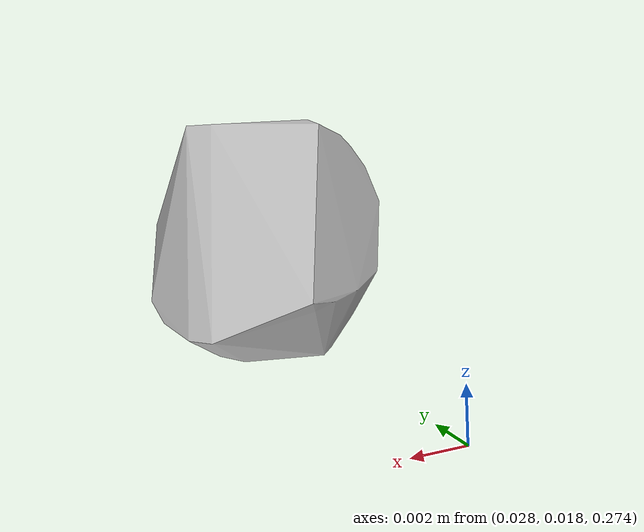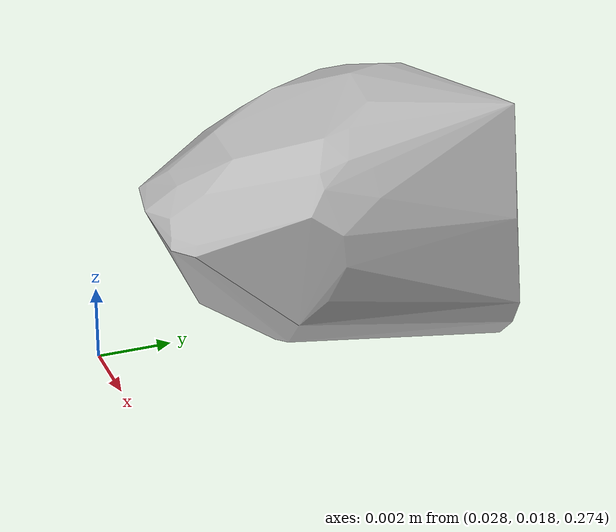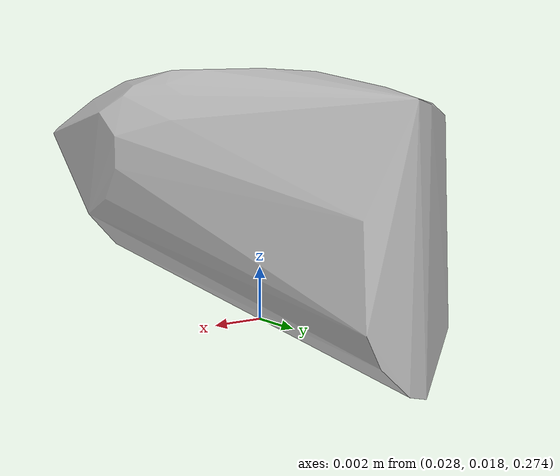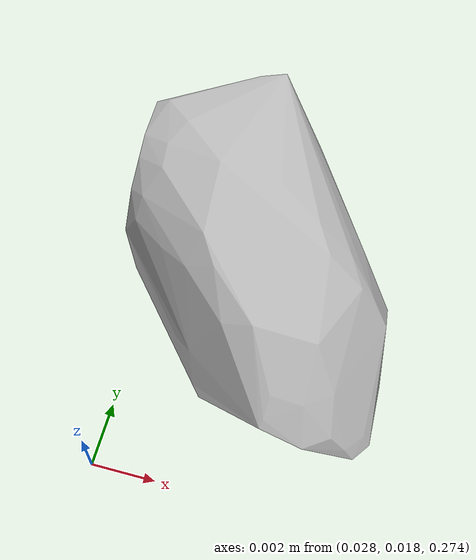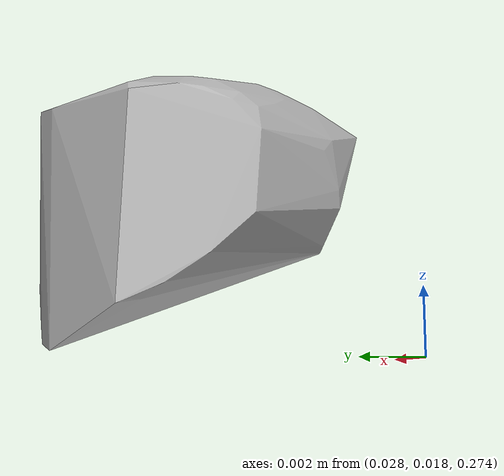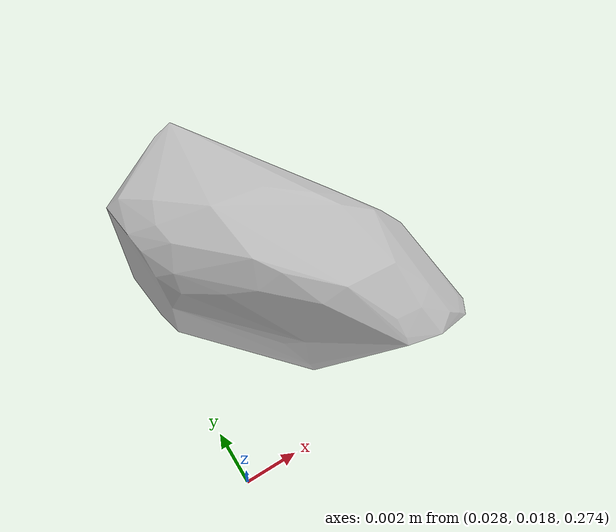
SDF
<?xml version="1.0"?>
<sdf version="1.7">
  <model name="vascular_partexport063">
    <link name="vascular_partexport063_body">
      <visual name="vascular_partexport063_visual">
        <geometry>
          <mesh>
            <uri>vascular_partexport063.obj</uri>
          </mesh>
        </geometry>
      </visual>
      <collision name="vascular_partexport063_collision">
        <geometry>
          <mesh>
            <uri>vascular_partexport063.obj</uri>
          </mesh>
        </geometry>
      </collision>
    </link>
    <frame name="vascular_partexport063_center">
      <pose relative_to="vascular_partexport063_body">0 0 0 0 0 0</pose>
    </frame>
  </model>
</sdf>
